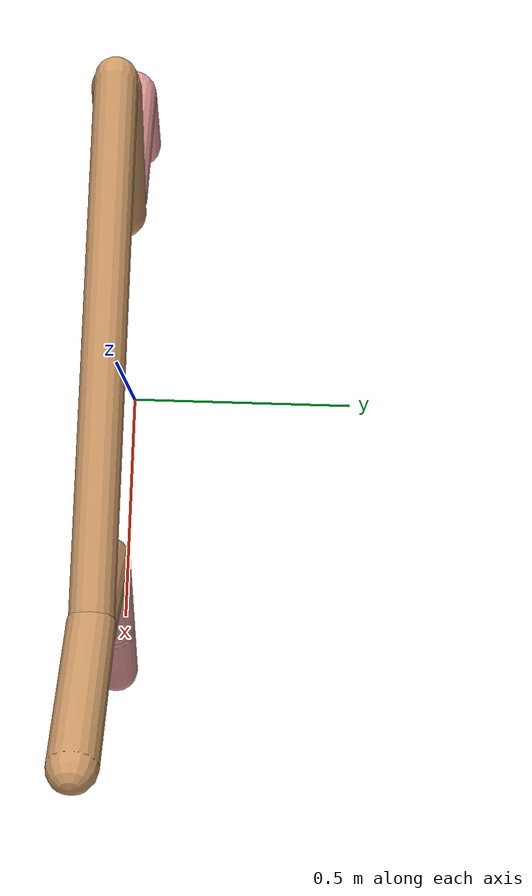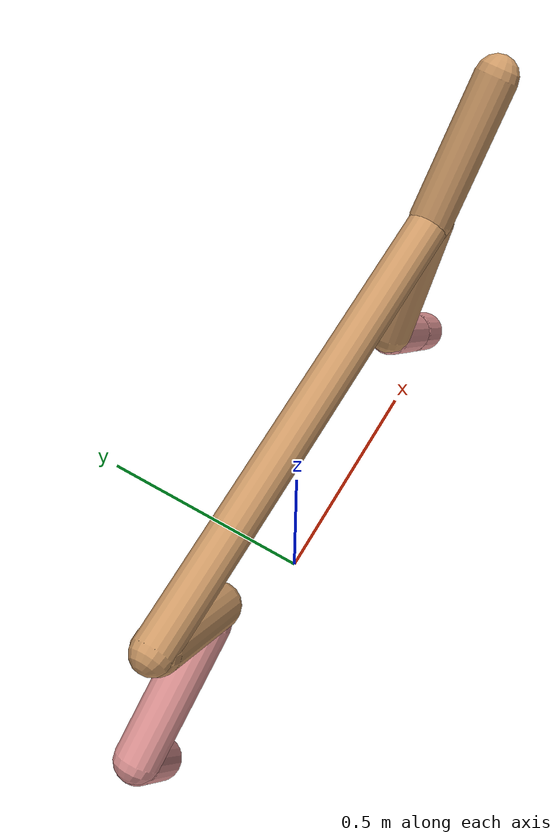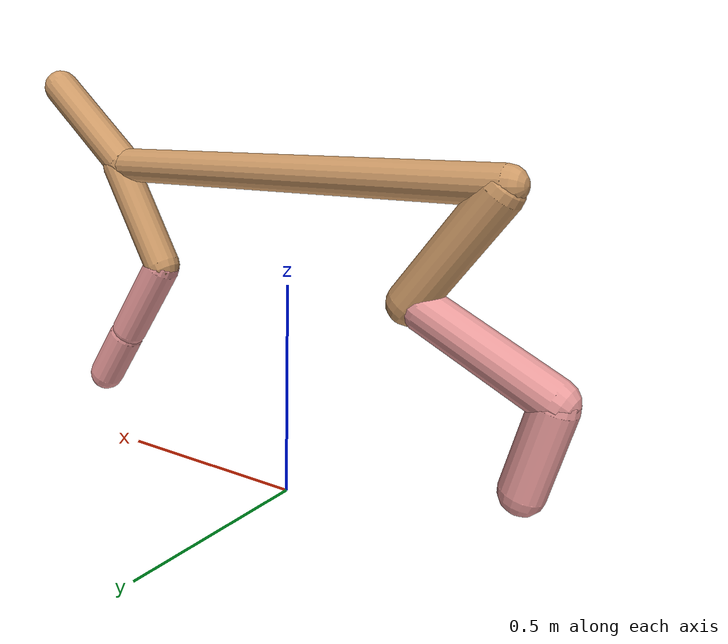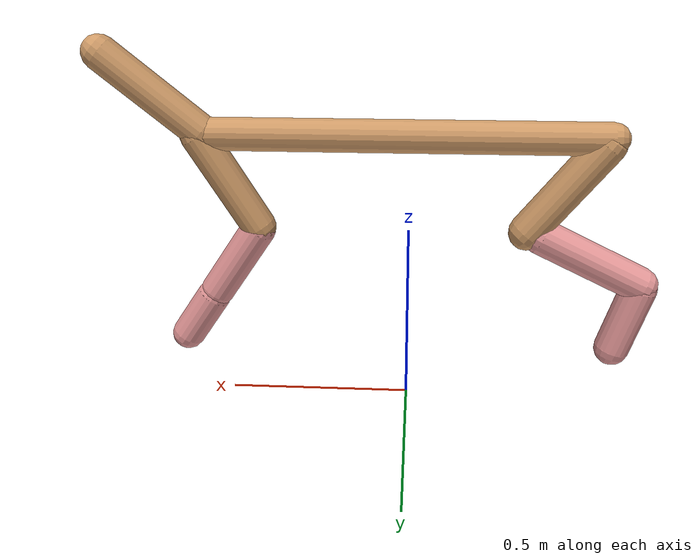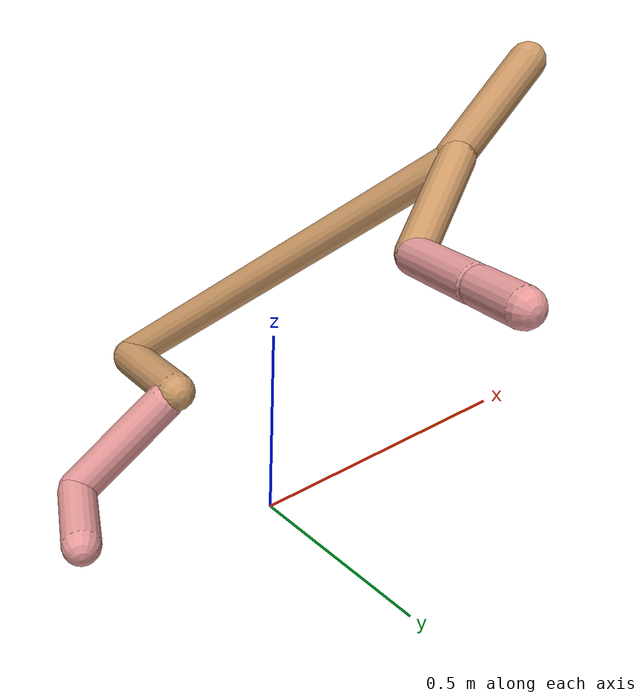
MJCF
<mujoco model="cheetah">
  <compiler angle="radian" coordinate="local" inertiafromgeom="true" settotalmass="14" />
  <default>
    <joint armature=".1" damping=".01" limited="true" solimplimit="0 .8 .03" solreflimit=".02 1" stiffness="8" />
    <geom conaffinity="0" condim="3" contype="1" friction="0.8 .1 .1" rgba="0.8 0.6 .4 1" solimp="0.0 0.8 0.01" solref="0.02 1" />
    <motor ctrllimited="true" ctrlrange="-1 1" />
  </default>
  <size nstack="300000" nuser_geom="1" />
  <option gravity="0 0 -9.81" timestep="0.01" />
  <worldbody>
    <body name="torso" pos="0.0 0.0 0.7520992109001426">
      <joint armature="0" axis="1 0 0" damping="0" limited="false" name="ignorex" pos="0 0 0" stiffness="0" type="slide" />
      <joint armature="0" axis="0 0 1" damping="0" limited="false" name="ignorez" pos="0 0 0" stiffness="0" type="slide" />
      <joint armature="0" axis="0 1 0" damping="0" limited="false" name="ignorey" pos="0 0 0" stiffness="0" type="hinge" />
      <geom fromto="-0.5 0.0 0.0 0.5371322435597805 0.0 0.0" name="torso" size="0.041844511010221075" type="capsule" />
      <geom axisangle="0 1 0 .87" name="head" pos="0.6371322435597805 0.0 0.1" size="0.04503269633597466 0.15" type="capsule" />

      <body name="bthigh" pos="-.5 0 0">
        <joint axis="0 1 0" damping="6" name="bthigh" pos="0 0 0" range="-.52 1.05" stiffness="240" type="hinge" />
        <geom axisangle="0 1 0 -3.8" name="bthigh" pos="0.1023265367900622 0.0 -0.13302449782708087" size="0.047904633679112046 0.14881580404915265" type="capsule" />
        <body name="bshin" pos="0.1646530735801244 0.0 -0.2560489956541617">
          <joint axis="0 1 0" damping="4.5" name="bshin" pos="0 0 0" range="-.785 .785" stiffness="180" type="hinge" />
          <geom axisangle="0 1 0 -2.03" name="bshin" pos="-0.14353064713492042 0.0 -0.07176532356746021" rgba="0.9 0.6 0.6 1" size="0.047904633679112046 0.15394738349912343" type="capsule" />
          <body name="bfoot" pos="-0.28706129426984084 0.0 -0.14353064713492042">
            <joint axis="0 1 0" damping="3" name="bfoot" pos="0 0 0" range="-.4 .785" stiffness="120" type="hinge" />
            <geom axisangle="0 1 0 -.27" name="bfoot" pos="0.03073090158015197 0.0 -0.09936324844249138" rgba="0.9 0.6 0.6 1" size="0.047904633679112046 0.09647369365945069" type="capsule" />
            <inertial mass="10" />
          </body>
        </body>
      </body>
      <body name="fthigh" pos="0.5371322435597805 0.0 0.0">
        <joint axis="0 1 0" damping="4.5" name="fthigh" pos="0 0 0" range="-1.5 0.8" stiffness="180" type="hinge" />
        <geom axisangle="0 1 0 .52" name="fthigh" pos="-0.07365211361480997 0.0 -0.1262607661968171" size="0.04515502391577126 0.1402481119766935" type="capsule" />
        <body name="fshin" pos="-0.14730422722961994 0.0 -0.2525215323936342">
          <joint axis="0 1 0" damping="3" name="fshin" pos="0 0 0" range="-1.2 1.1" stiffness="120" type="hinge" />
          <geom axisangle="0 1 0 -.6" name="fshin" pos="0.06838219786563444 0.0 -0.09468304319857077" rgba="0.9 0.6 0.6 1" size="0.04515502391577126 0.11177669074834218" type="capsule" />
          <body name="ffoot" pos="0.1367643957312689 0.0 -0.18936608639714153">
            <joint axis="0 1 0" damping="1.5" name="ffoot" pos="0 0 0" range="-3.1 -0.3" stiffness="60" type="hinge" />
            <geom axisangle="0 1 0 -.6" name="ffoot" pos="0.04706287977583542 0.0 -0.07320892409574399" rgba="0.9 0.6 0.6 1" size="0.04515502391577126 0.0738147957772071" type="capsule" />
            <inertial mass="10" />
          </body>
        </body>
      </body>
    </body>
  </worldbody>
  <actuator>
    <motor gear="120" joint="bthigh" name="bthigh" />
    <motor gear="90" joint="bshin" name="bshin" />
    <motor gear="60" joint="bfoot" name="bfoot" />
    <motor gear="120" joint="fthigh" name="fthigh" />
    <motor gear="60" joint="fshin" name="fshin" />
    <motor gear="30" joint="ffoot" name="ffoot" />
  </actuator>
</mujoco>
